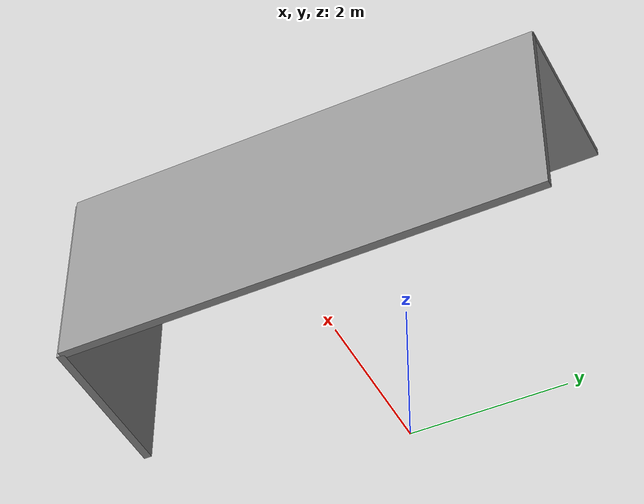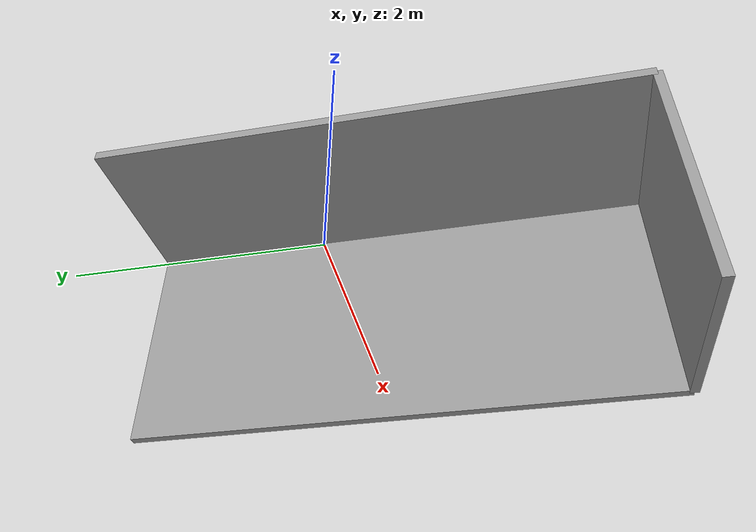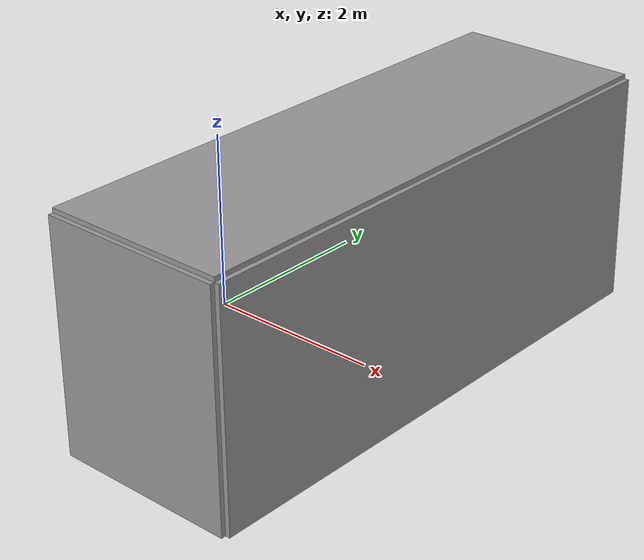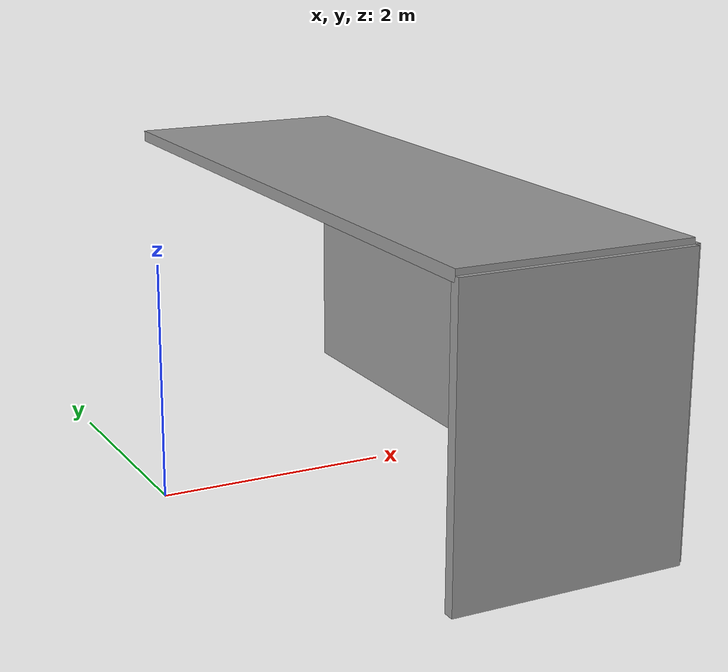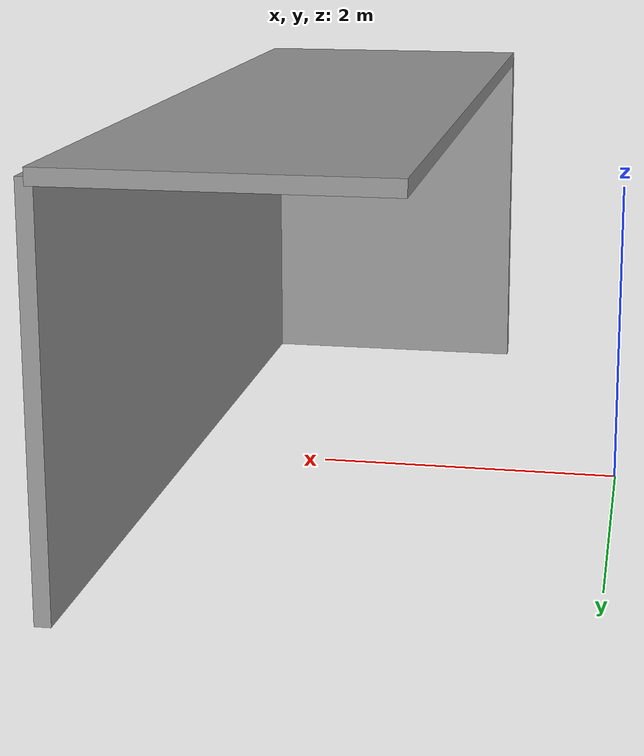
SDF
<?xml version='1.0'?>
<sdf version='1.6'>
  <model name='two_walls'>
    <pose frame=''>0 0 0 0 0 0</pose>
    <link name='Wall_0'>
      <collision name='Wall_0_Collision'>
        <geometry>
          <box>
            <size>2 0.1 2.5</size>
          </box>
        </geometry>
      </collision>
      <visual name='Wall_0_Visual'>
        <geometry>
          <box>
            <size>2 0.1 2.5</size>
          </box>
        </geometry>
        <material>
          <script>
            <uri>file://media/materials/scripts/gazebo.material</uri>
            <name>Gazebo/Grey</name>
          </script>
          <ambient>1 1 1 1</ambient>
        </material>
        <meta>
          <layer>0</layer>
        </meta>
      </visual>
      <pose>2 -3 1.25 0 0 0</pose>
    </link>
    <link name='Wall_1'>
      <collision name='Wall_1_Collision'>
        <geometry>
          <box>
            <size>0.1 6 2.5</size>
          </box>
        </geometry>
      </collision>
      <visual name='Wall_1_Visual'>
        <geometry>
          <box>
            <size>0.1 6 2.5</size>
          </box>
        </geometry>
        <material>
          <script>
            <uri>file://media/materials/scripts/gazebo.material</uri>
            <name>Gazebo/Grey</name>
          </script>
          <ambient>1 1 1 1</ambient>
        </material>
        <meta>
          <layer>0</layer>
        </meta>
      </visual>
      <pose>3 0 1.25 0 0 0</pose>
    </link>
    <link name='ceiling'>
      <collision name='ceiling_Collision'>
        <geometry>
          <box>
            <size>3 6 0.1</size>
          </box>
        </geometry>
      </collision>
      <visual name='ceiling_Visual'>
        <geometry>
          <box>
            <size>2 6 0.1</size>
          </box>
        </geometry>
        <material>
          <script>
            <uri>file://media/materials/scripts/gazebo.material</uri>
            <name>Gazebo/Grey</name>
          </script>
          <ambient>1 1 1 1</ambient>
        </material>
        <meta>
          <layer>0</layer>
        </meta>
      </visual>
      <pose>2 0 2.5 0 0 0</pose>
    </link>
    <static>1</static>
  </model>
</sdf>
